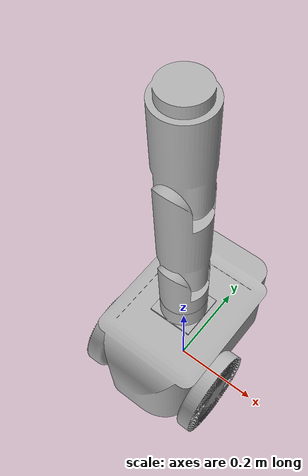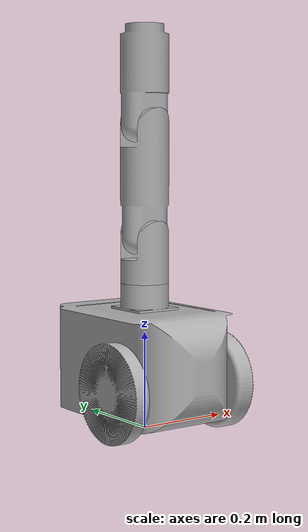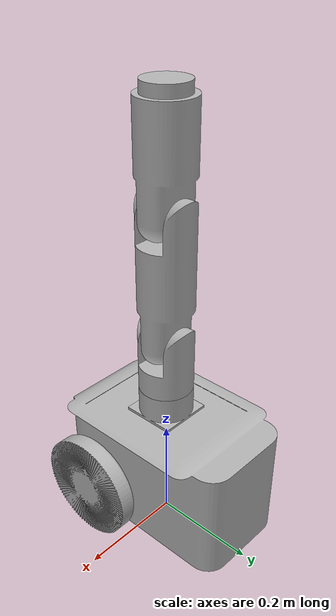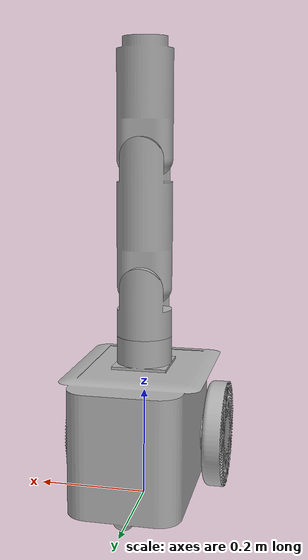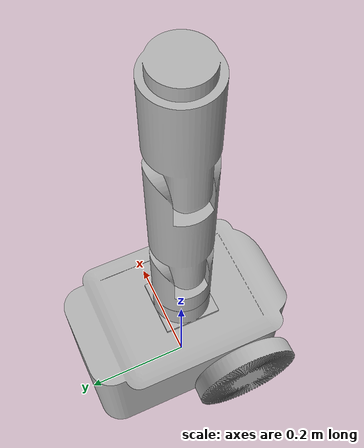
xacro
<?xml version="1.0" ?>
<robot name="ddrobot" xmlns:xacro="http://www.ros.org/wiki/xacro">

<xacro:include filename="$(find ddrobot_description)/urdf/materials.xacro" />
<xacro:include filename="$(find ddrobot_description)/urdf/ddrobot.trans" />
<xacro:include filename="$(find ddrobot_description)/urdf/ddrobot.gazebo" />
<link name="base_link">
  <inertial>
    <origin xyz="-6.625537917614367e-08 0.01141602796883514 0.13809713409251909" rpy="0 0 0"/>
    <mass value="128.0161805242377"/>
    <inertia ixx="2.060185" iyy="0.934257" izz="1.930434" ixy="-1e-06" iyz="0.025533" ixz="-0.0"/>
  </inertial>
  <visual>
    <origin xyz="0 0 0" rpy="0 0 0"/>
    <geometry>
      <mesh filename="package://ddrobot_description/meshes/base_link.stl" scale="0.001 0.001 0.001"/>
    </geometry>
    <material name="silver"/>
  </visual>
  <collision>
    <origin xyz="0 0 0" rpy="0 0 0"/>
    <geometry>
      <mesh filename="package://ddrobot_description/meshes/base_link.stl" scale="0.001 0.001 0.001"/>
    </geometry>
  </collision>
</link>

<link name="rightwheel_1">
  <inertial>
    <origin xyz="0.07787692493459164 1.3877787807814457e-16 1.3877787807814457e-17" rpy="0 0 0"/>
    <mass value="10.94621356233882"/>
    <inertia ixx="0.044556" iyy="0.028919" izz="0.028919" ixy="0.0" iyz="0.0" ixz="0.0"/>
  </inertial>
  <visual>
    <origin xyz="-0.04 0.075 -0.1" rpy="0 0 0"/>
    <geometry>
      <mesh filename="package://ddrobot_description/meshes/rightwheel_1.stl" scale="0.001 0.001 0.001"/>
    </geometry>
    <material name="silver"/>
  </visual>
  <collision>
    <origin xyz="-0.04 0.075 -0.1" rpy="0 0 0"/>
    <geometry>
      <mesh filename="package://ddrobot_description/meshes/rightwheel_1.stl" scale="0.001 0.001 0.001"/>
    </geometry>
  </collision>
</link>

<link name="leftwheel_1">
  <inertial>
    <origin xyz="-0.07787692493459186 7.494005416219807e-16 -7.632783294297951e-16" rpy="0 0 0"/>
    <mass value="10.946213562338906"/>
    <inertia ixx="0.044556" iyy="0.028919" izz="0.028919" ixy="0.0" iyz="0.0" ixz="-0.0"/>
  </inertial>
  <visual>
    <origin xyz="0.04 0.075 -0.1" rpy="0 0 0"/>
    <geometry>
      <mesh filename="package://ddrobot_description/meshes/leftwheel_1.stl" scale="0.001 0.001 0.001"/>
    </geometry>
    <material name="silver"/>
  </visual>
  <collision>
    <origin xyz="0.04 0.075 -0.1" rpy="0 0 0"/>
    <geometry>
      <mesh filename="package://ddrobot_description/meshes/leftwheel_1.stl" scale="0.001 0.001 0.001"/>
    </geometry>
  </collision>
</link>

<link name="link0_1">
  <inertial>
    <origin xyz="-6.217248937900877e-17 -2.2204460492503132e-17 0.02689405273956319" rpy="0 0 0"/>
    <mass value="3.475187791334983"/>
    <inertia ixx="0.00316" iyy="0.00316" izz="0.004508" ixy="-0.0" iyz="0.0" ixz="-0.0"/>
  </inertial>
  <visual>
    <origin xyz="-0.0 0.0 -0.249" rpy="0 0 0"/>
    <geometry>
      <mesh filename="package://ddrobot_description/meshes/link0_1.stl" scale="0.001 0.001 0.001"/>
    </geometry>
    <material name="silver"/>
  </visual>
  <collision>
    <origin xyz="-0.0 0.0 -0.249" rpy="0 0 0"/>
    <geometry>
      <mesh filename="package://ddrobot_description/meshes/link0_1.stl" scale="0.001 0.001 0.001"/>
    </geometry>
  </collision>
</link>

<link name="link1_1">
  <inertial>
    <origin xyz="-1.1002164687284844e-08 -1.3983370597598433e-08 0.04378455454736069" rpy="0 0 0"/>
    <mass value="4.400022943131598"/>
    <inertia ixx="0.008811" iyy="0.007251" izz="0.006234" ixy="-0.0" iyz="0.0" ixz="0.0"/>
  </inertial>
  <visual>
    <origin xyz="0.0 0.0 -0.304" rpy="0 0 0"/>
    <geometry>
      <mesh filename="package://ddrobot_description/meshes/link1_1.stl" scale="0.001 0.001 0.001"/>
    </geometry>
    <material name="silver"/>
  </visual>
  <collision>
    <origin xyz="0.0 0.0 -0.304" rpy="0 0 0"/>
    <geometry>
      <mesh filename="package://ddrobot_description/meshes/link1_1.stl" scale="0.001 0.001 0.001"/>
    </geometry>
  </collision>
</link>

<link name="link2_1">
  <inertial>
    <origin xyz="-8.007388120591914e-10 0.03000168304063522 0.11355186192831879" rpy="0 0 0"/>
    <mass value="11.901709381665485"/>
    <inertia ixx="0.061586" iyy="0.061662" izz="0.014787" ixy="-0.0" iyz="-0.0" ixz="0.0"/>
  </inertial>
  <visual>
    <origin xyz="0.0 0.03 -0.394" rpy="0 0 0"/>
    <geometry>
      <mesh filename="package://ddrobot_description/meshes/link2_1.stl" scale="0.001 0.001 0.001"/>
    </geometry>
    <material name="silver"/>
  </visual>
  <collision>
    <origin xyz="0.0 0.03 -0.394" rpy="0 0 0"/>
    <geometry>
      <mesh filename="package://ddrobot_description/meshes/link2_1.stl" scale="0.001 0.001 0.001"/>
    </geometry>
  </collision>
</link>

<link name="link3_1">
  <inertial>
    <origin xyz="7.766699923110568e-11 0.0300013797587015 0.10538129626765314" rpy="0 0 0"/>
    <mass value="11.505848530781071"/>
    <inertia ixx="0.048483" iyy="0.050264" izz="0.013311" ixy="0.0" iyz="0.0" ixz="0.0"/>
  </inertial>
  <visual>
    <origin xyz="-0.0 0.029998 -0.624" rpy="0 0 0"/>
    <geometry>
      <mesh filename="package://ddrobot_description/meshes/link3_1.stl" scale="0.001 0.001 0.001"/>
    </geometry>
    <material name="silver"/>
  </visual>
  <collision>
    <origin xyz="-0.0 0.029998 -0.624" rpy="0 0 0"/>
    <geometry>
      <mesh filename="package://ddrobot_description/meshes/link3_1.stl" scale="0.001 0.001 0.001"/>
    </geometry>
  </collision>
</link>

<joint name="Rev1" type="continuous">
  <origin xyz="0.04 -0.075 0.1" rpy="0 0 0"/>
  <parent link="base_link"/>
  <child link="rightwheel_1"/>
  <axis xyz="-1.0 0.0 0.0"/>
</joint>

<joint name="Rev2" type="continuous">
  <origin xyz="-0.04 -0.075 0.1" rpy="0 0 0"/>
  <parent link="base_link"/>
  <child link="leftwheel_1"/>
  <axis xyz="-1.0 0.0 0.0"/>
</joint>

<joint name="Rigid3" type="fixed">
  <origin xyz="0.0 0.0 0.249" rpy="0 0 0"/>
  <parent link="base_link"/>
  <child link="link0_1"/>
</joint>

<joint name="Rev4" type="continuous">
  <origin xyz="-0.0 0.0 0.055" rpy="0 0 0"/>
  <parent link="link0_1"/>
  <child link="link1_1"/>
  <axis xyz="0.0 0.0 1.0"/>
</joint>

<joint name="Rev5" type="revolute">
  <origin xyz="0.0 -0.03 0.09" rpy="0 0 0"/>
  <parent link="link1_1"/>
  <child link="link2_1"/>
  <axis xyz="0.0 1.0 -0.0"/>
  <limit upper="1.308997" lower="-1.308997" effort="100" velocity="100"/>
</joint>

<joint name="Rev6" type="revolute">
  <origin xyz="0.0 2e-06 0.23" rpy="0 0 0"/>
  <parent link="link2_1"/>
  <child link="link3_1"/>
  <axis xyz="-0.0 1.0 -0.0"/>
  <limit upper="1.308997" lower="-1.308997" effort="100" velocity="100"/>
</joint>

</robot>

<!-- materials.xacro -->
<robot name="ddrobot" xmlns:xacro="http://www.ros.org/wiki/xacro" >

<material name="silver">
  <color rgba="0.700 0.700 0.700 1.000"/>
</material>

</robot>

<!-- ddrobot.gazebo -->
<robot name="ddrobot" xmlns:xacro="http://www.ros.org/wiki/xacro" >

<xacro:property name="body_color" value="Gazebo/Silver" />

  <gazebo>
    <plugin name="gazebo_ros_control" filename="libgazebo_ros_control.so">
      <robotNamespace>ddrobot</robotNamespace>
      <robotSimType>gazebo_ros_control/DefaultRobotHWSim</robotSimType>
    </plugin>
  </gazebo>

<gazebo reference="base_link">
  <material>${body_color}</material>
  <mu1>0.2</mu1>
  <mu2>0.2</mu2>
  <selfCollide>true</selfCollide>
  <gravity>true</gravity>
</gazebo>

<gazebo reference="rightwheel_1">
  <material>${body_color}</material>
  <mu1>1500</mu1>
  <mu2>1500</mu2>
  <selfCollide>true</selfCollide>
</gazebo>

<gazebo reference="leftwheel_1">
  <material>${body_color}</material>
  <mu1>1500</mu1>
  <mu2>1500</mu2>
  <selfCollide>true</selfCollide>
</gazebo>

<gazebo reference="link0_1">
  <material>${body_color}</material>
  <mu1>0.2</mu1>
  <mu2>0.2</mu2>
  <selfCollide>true</selfCollide>
</gazebo>

<gazebo reference="link1_1">
  <material>${body_color}</material>
  <mu1>0.2</mu1>
  <mu2>0.2</mu2>
  <selfCollide>true</selfCollide>
</gazebo>

<gazebo reference="link2_1">
  <material>${body_color}</material>
  <mu1>0.2</mu1>
  <mu2>0.2</mu2>
  <selfCollide>true</selfCollide>
</gazebo>

<gazebo reference="link3_1">
  <material>${body_color}</material>
  <mu1>0.2</mu1>
  <mu2>0.2</mu2>
  <selfCollide>true</selfCollide>
</gazebo>

<gazebo>
  <plugin name="differential_drive_controller" filename="libgazebo_ros_diff_drive.so">

    <!-- Plugin update rate in Hz -->
    <updateRate>100</updateRate>

    <!-- Name of left joint, defaults to `left_joint` -->
    <leftJoint>Rev2</leftJoint>

    <!-- Name of right joint, defaults to `right_joint` -->
    <rightJoint>Rev1</rightJoint>

    <!-- The distance from the center of one wheel to the other, in meters, defaults to 0.34 m -->

    <!-- Diameter of the wheels, in meters, defaults to 0.15 m -->

    <!-- Wheel acceleration, in rad/s^2, defaults to 0.0 rad/s^2 -->
    <wheelAcceleration>1.0</wheelAcceleration>

    <!-- Maximum torque which the wheels can produce, in Nm, defaults to 5 Nm -->
    <wheelTorque>20</wheelTorque>

    <!-- Topic to receive geometry_msgs/Twist message commands, defaults to `cmd_vel` -->
    <commandTopic>cmd_vel</commandTopic>

    <!-- Topic to publish nav_msgs/Odometry messages, defaults to `odom` -->
    <odometryTopic>odom</odometryTopic>

    <!-- Odometry frame, defaults to `odom` -->
    <odometryFrame>odom</odometryFrame>

    <!-- Robot frame to calculate odometry from, defaults to `base_footprint` -->
    <robotBaseFrame>base_link</robotBaseFrame>

    <!-- Odometry source, 0 for ENCODER, 1 for WORLD, defaults to WORLD -->
    <odometrySource>1</odometrySource>

    <!-- Set to true to publish transforms for the wheel links, defaults to false -->
    <publishWheelTF>true</publishWheelTF>

    <!-- Set to true to publish transforms for the odometry, defaults to true -->
    <publishOdom>true</publishOdom>

    <!-- Set to true to publish sensor_msgs/JointState on /joint_states for the wheel joints, defaults to false -->
    <publishWheelJointState>true</publishWheelJointState>

    <!-- Set to true to swap right and left wheels, defaults to true -->
    <legacyMode>false</legacyMode>
  </plugin>
</gazebo>

</robot>
